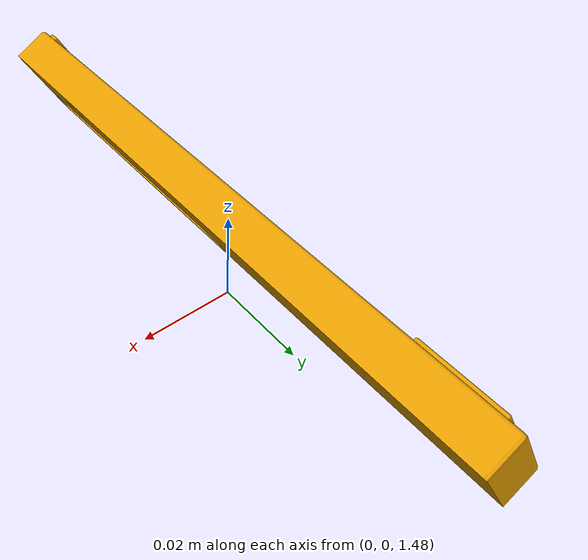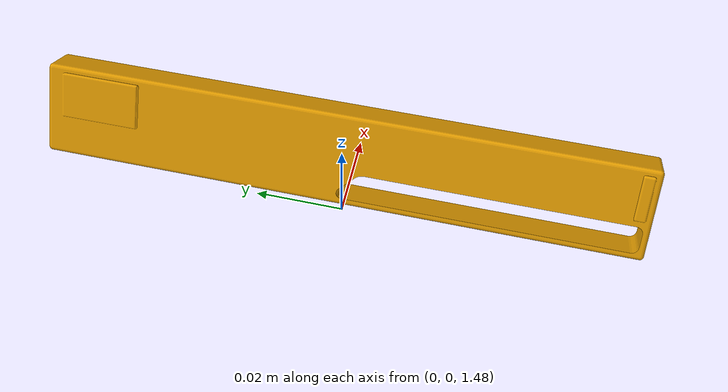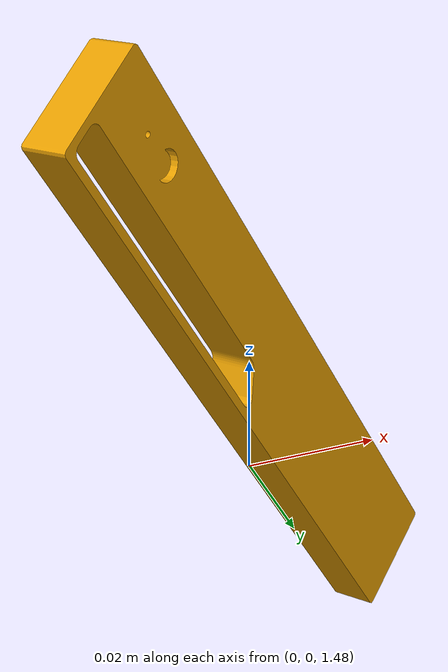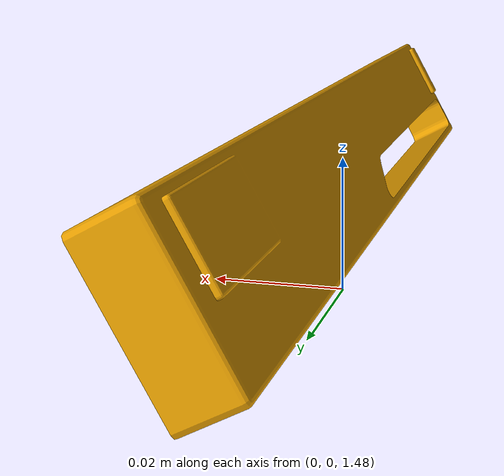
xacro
<?xml version="1.0"?>
<!--Develped by Daniel Ordonez 22.05.2018 - daniels.ordonez@gmail.com
	INFORMATION:
		This is an example of how to use the realsense-rs200 macro function.
-->
<robot name="test_with_realsense_rs200" xmlns:xacro="http://ros.org/wiki/xacro">

  <xacro:include filename="$(find robot_eyes)/urdf/realsense-RS200.macro.xacro" />

  <!-- Create camera instance -->
  <xacro:realsense-rs200 />

  <link name="world"/>

  <!-- Place camera referenced to world frame  -->
  <joint name="realsense_joint" type="fixed">
    <parent link="world" />
    <child link="rs200_camera" />
    <origin xyz="0 0 1.5" rpy="0 0.5 0"/>
  </joint>

</robot>

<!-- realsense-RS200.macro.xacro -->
<robot xmlns:xacro="http://ros.org/wiki/xacro">
<xacro:macro name="realsense-rs200">

	<!-- Camera link -->
	<link name="rs200_camera">
		<visual>
			<origin rpy="0 0 0" xyz="0 0 0"/>
			<geometry>
				<mesh filename="package://realsense_gazebo_plugin/models/realsense_camera/meshes/realsense.dae"/>
			</geometry>
		</visual>
		<collision>
			<geometry>
          		<box size="0.0078 0.130 0.0192"/>
        	</geometry>
		</collision>
		<inertial>
        	<mass value="0.0615752"/>
			<origin rpy="0 0 0" xyz="0 0 0"/>
			<inertia ixx="9.108e-05"
					 ixy="0"
				     ixz="0"
				     iyy="2.51e-06"
				     iyz="0"
				     izz="8.931e-05"
			/>
      	</inertial>
	</link>

	<!-- Virtual links representing the cameras positons and orientations-->
	<link name="color" />
	<link name="depth" />
	<link name="ired1" />
	<link name="ired2" />

	<!-- Joints positioning the virtual links with respect to the camera main link-->
	<joint name="color_joint" type="fixed">
    	<parent link="rs200_camera" />
    	<child link="color" />
		<!-- The default position is change since in Rviz the cloud depth axis is Z not X-->
		<origin xyz="0 -0.046 0.004" rpy="${pi/2} ${pi} ${pi/2}"/>
 	</joint>

	<joint name="depth_joint" type="fixed">
    	<parent link="rs200_camera" />
    	<child link="depth" />
		<origin xyz="0 -0.03 0.004" rpy="${pi/2} ${pi} ${pi/2}"/>
 	</joint>

	<joint name="ired1_joint" type="fixed">
    	<parent link="rs200_camera" />
    	<child link="ired1" />
		<origin xyz="0 -0.06 0.004" rpy="${pi/2} ${pi} ${pi/2}"/>
 	</joint>

	<joint name="ired2_joint" type="fixed">
		<parent link="rs200_camera" />
		<child link="ired2" />
		<origin xyz="0 0.01 0.004" rpy="${pi/2} ${pi} ${pi/2}"/>
 	</joint>

<!-- GAZEBO DEFINITIONS ***************************************-->

	<!-- Load plugin to the model ("robot" in urdf format)-->
	<gazebo>
		<plugin name="realsense_plugin" filename="librealsense_gazebo_plugin.so"/>
	</gazebo>

	<!-- Load parameters to model's main link-->
	<gazebo reference="rs200_camera">
		<self_collide>0</self_collide>
		<enable_wind>0</enable_wind>
		<kinematic>0</kinematic>
		<gravity>1</gravity>
		<mu2>1</mu2>
		<fdir1>0 0 0</fdir1>
		<kp>1e+13</kp>
		<kd>1</kd>

		<sensor name="color" type="camera">
			<pose frame="">0 -0.046 0.004 0 0 0</pose>
			<camera name="__default__">
			<horizontal_fov>1.047</horizontal_fov>
			<image>
				<width>640</width>
				<height>480</height>
				<format>RGB_INT8</format>
			</image>
			<clip>
				<near>0.1</near>
				<far>100</far>
			</clip>
			<noise>
				<type>gaussian</type>
				<mean>0.0</mean>
				<stddev>0.007</stddev>
			</noise>
			</camera>
			<always_on>1</always_on>
			<update_rate>60</update_rate>
			<visualize>1</visualize>
		</sensor>
		<sensor name="ired1" type="camera">
			<pose frame="">0 -0.06 0.004 0 0 0</pose>
			<camera name="__default__">
			<horizontal_fov>1.047</horizontal_fov>
			<image>
				<width>640</width>
				<height>480</height>
				<format>L_INT8</format>
			</image>
			<clip>
				<near>0.1</near>
				<far>100</far>
			</clip>
			<noise>
				<type>gaussian</type>
				<mean>0.0</mean>
				<stddev>0.05</stddev>
			</noise>
			</camera>
			<always_on>1</always_on>
			<update_rate>60</update_rate>
			<visualize>0</visualize>
		</sensor>
		<sensor name="ired2" type="camera">
			<pose frame="">0 0.01 0.004 0 0 0</pose>
			<camera name="__default__">
			<horizontal_fov>1.047</horizontal_fov>
			<image>
				<width>640</width>
				<height>480</height>
				<format>L_INT8</format>
			</image>
			<clip>
				<near>0.1</near>
				<far>100</far>
			</clip>
			<noise>
				<type>gaussian</type>
				<mean>0.0</mean>
				<stddev>0.05</stddev>
			</noise>
			</camera>
			<always_on>1</always_on>
			<update_rate>60</update_rate>
			<visualize>0</visualize>
		</sensor>
		<sensor name="depth" type="depth">
			<pose frame="">0 -0.03 0.004 0 0 0</pose>
			<camera name="__default__">
			<horizontal_fov>1.047</horizontal_fov>
			<image>
				<width>640</width>
				<height>480</height>
			</image>
			<clip>
				<near>0.1</near>
				<far>100</far>
			</clip>
			<noise>
				<type>gaussian</type>
				<mean>0.0</mean>
				<stddev>0.100</stddev>
			</noise>
			</camera>
			<always_on>1</always_on>
			<update_rate>60</update_rate>
			<visualize>0</visualize>
		</sensor>

	</gazebo>

</xacro:macro>
</robot>
